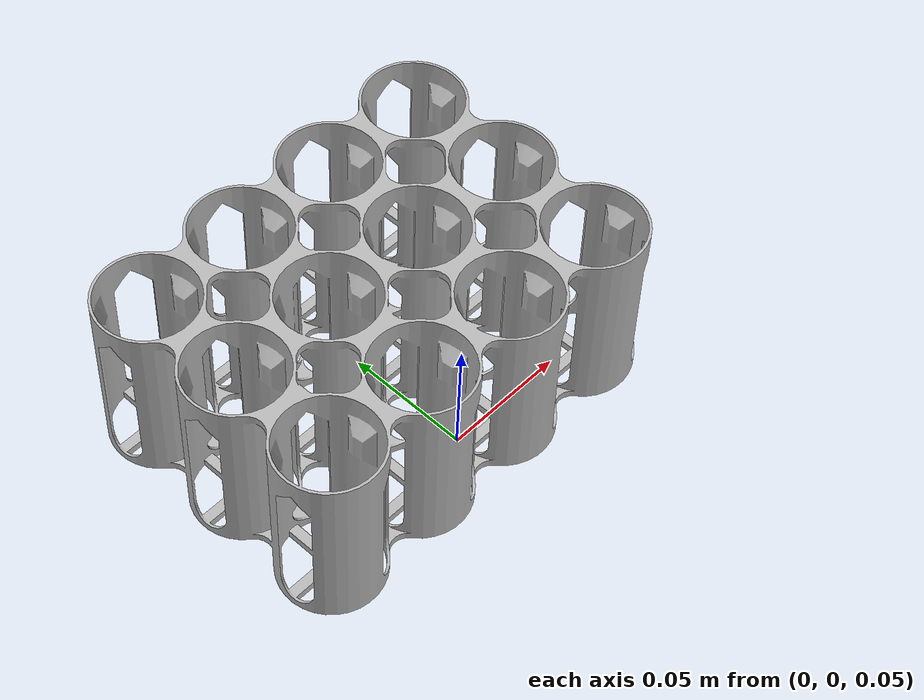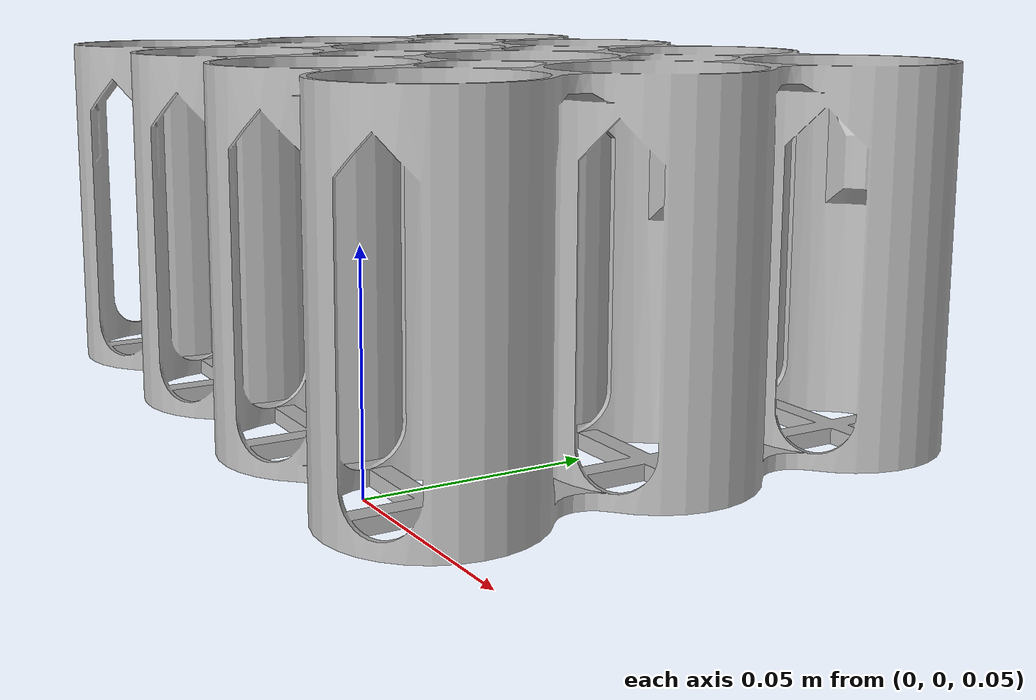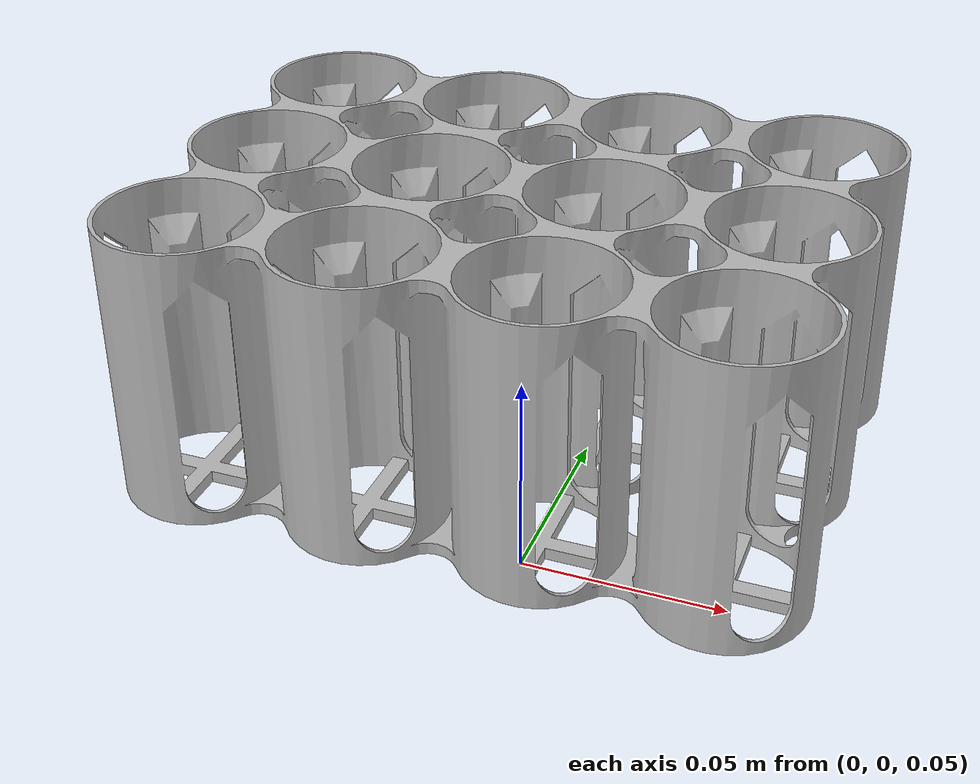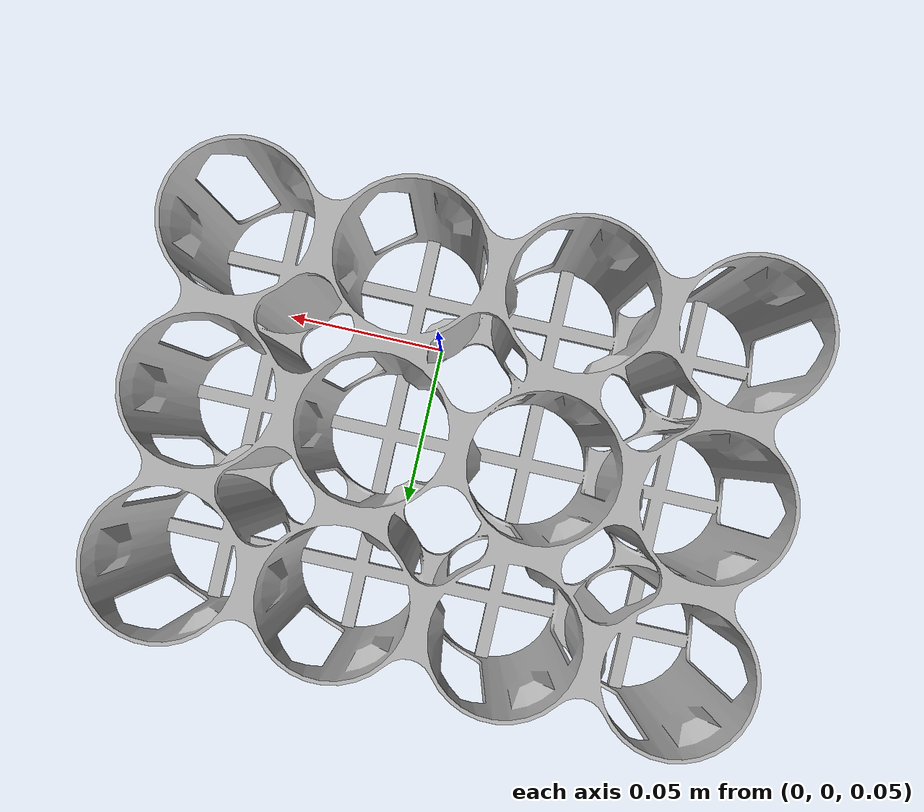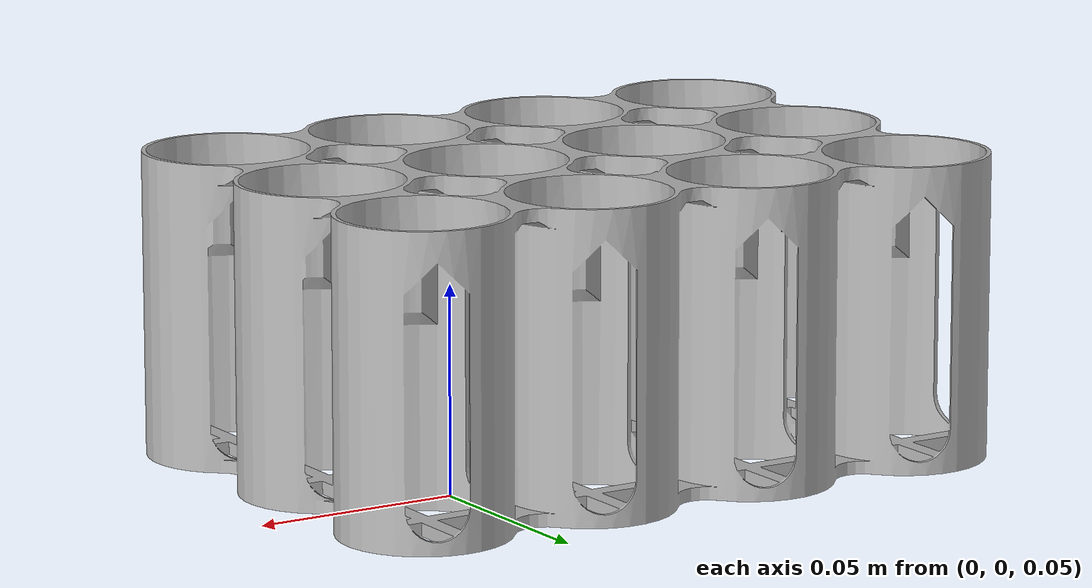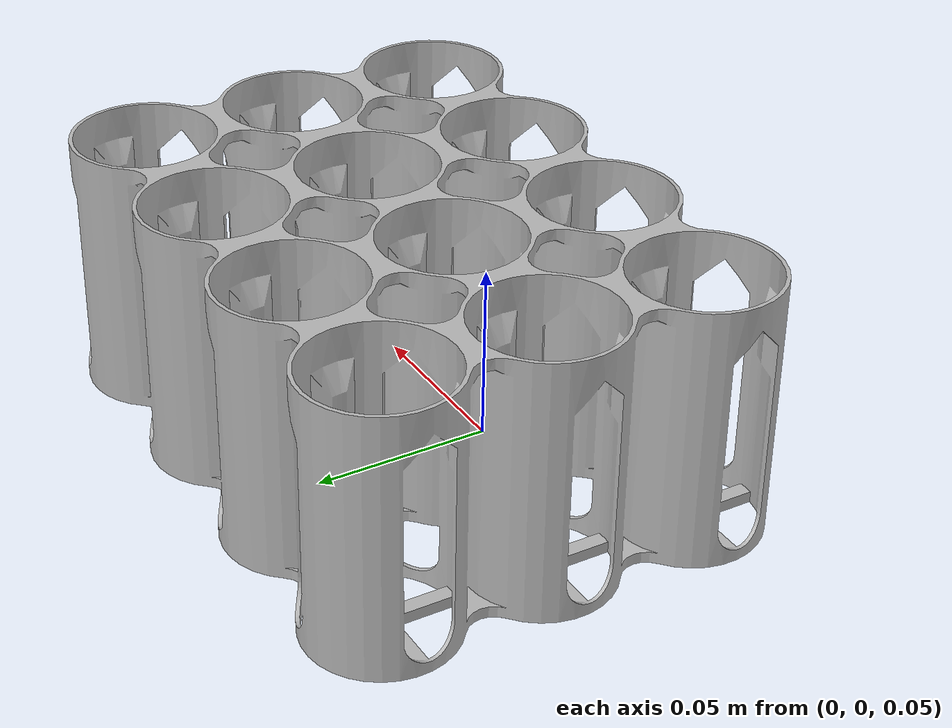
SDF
<?xml version="1.0" ?>
<sdf version="1.5">
  <model name="test_tube_stand">
    <static>1</static>
    <link name="link">
      <pose>0 0 0.065 0 0 0</pose>
      <collision name="collision">
        <geometry>
          <mesh>
            <uri>model://test_tube_stand/meshes/test_tube_stand.dae</uri>
          </mesh>
        </geometry>
      </collision>
      <visual name="visual">
        <geometry>
          <mesh>
            <uri>model://test_tube_stand/meshes/test_tube_stand.dae</uri>
          </mesh>
        </geometry>
        <transparency>0</transparency>
      </visual>
    </link>
  </model>
</sdf>
